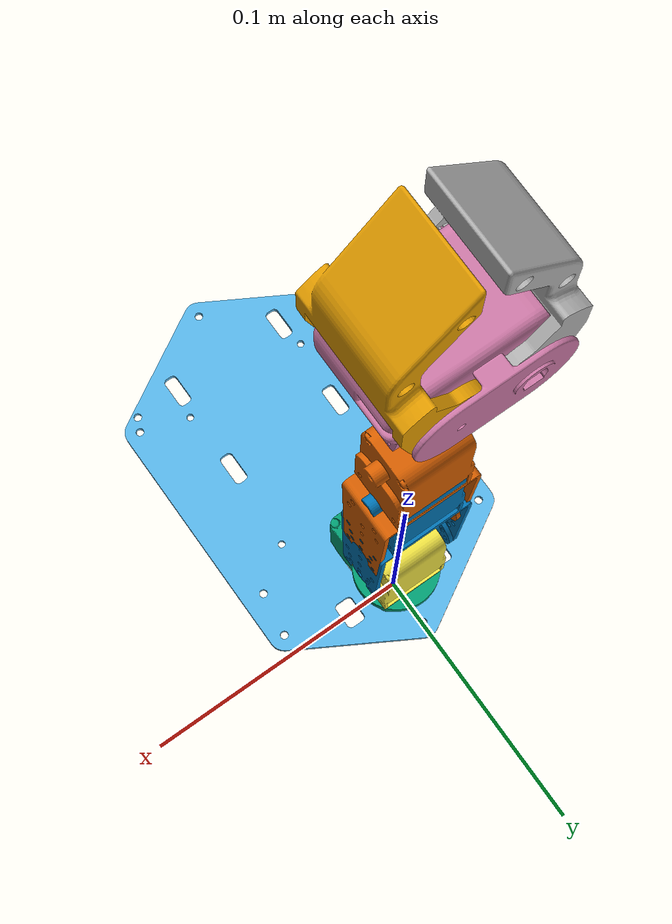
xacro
<?xml version="1.0"?>
<robot name="raspigibbon"
       xmlns:sensor="http://playerstage.sourceforge.net/gazebo/xmlschema/#sensor"
       xmlns:controller="http://playerstage.sourceforge.net/gazebo/xmlschema/#controller"
       xmlns:interface="http://playerstage.sourceforge.net/gazebo/xmlschema/#interface"
       xmlns:xacro="http://ros.org/wiki/xacro">

  <xacro:include filename="$(find raspigibbon_description)/urdf/base.urdf.xacro"/>
  <xacro:include filename="$(find raspigibbon_description)/urdf/link.urdf.xacro"/>

  <!-- ========== Link & Joint ========== -->
  <xacro:base_link/>
  <xacro:servo_link linkid="1" meshid="2" jointname="joint1" parent="link0">
    <origin xyz="0 0 0.029" rpy="0 0 0"/>
    <axis xyz="0 0 -1"/>
    <limit lower="-2.52" upper="2.52" effort="0.5293" velocity="6.159937255"/>
    <origin xyz="0.000157 0 0.019222"/>
    <mass value="0.023032"/>
    <inertia ixx="0.000003514815" ixy="-0.000000000001" iyy="0.000003930066" ixz="-0.000000004487" iyz="0.000000000001" izz="0.000001852796"/>
  </xacro:servo_link>

  <xacro:servo_link linkid="2" meshid="3" jointname="joint2" parent="link1">
    <origin xyz="0 0 0.03055" rpy="0 0 0"/>
    <axis xyz="1 0 0"/>
    <limit lower="-2.52" upper="2.52" effort="0.5293" velocity="6.159937255"/>
    <origin xyz="0.000136 0 0.007403"/>
    <mass value="0.032345"/>
    <inertia ixx="0.000017682369" ixy="-0.000000000049" iyy="0.000019757486" ixz="-0.000000000767" iyz="0.000000000197" izz="0.000004109466"/>
  </xacro:servo_link>

  <xacro:servo_link linkid="3" meshid="4" jointname="joint3" parent="link2">
    <origin xyz="0 0 0.08055" rpy="0 0 0"/>
    <axis xyz="1 0 0"/>
    <limit lower="-2.52" upper="2.52" effort="0.5293" velocity="6.159937255"/>
    <origin xyz="0.000136 0 0.007403"/>
    <mass value="0.032345"/>
    <inertia ixx="0.000017682369" ixy="-0.000000000049" iyy="0.000019757486" ixz="-0.000000000767" iyz="0.000000000197" izz="0.000004109466"/>
  </xacro:servo_link>

  <xacro:servo_link linkid="4" meshid="5" jointname="joint4" parent="link3">
    <origin xyz="0 0 0.08055" rpy="0 0 0"/>
    <axis xyz="1 0 0"/>
    <limit lower="-1.99" upper="1.99" effort="0.5293" velocity="6.159937255"/>
    <origin xyz="0.000253 0.000821 0.013947"/>
    <mass value="0.041117"/>
    <inertia ixx="0.000006913101" ixy="0.000000054083" iyy="0.000009528465" ixz="-0.000000059992" iyz="-0.000000095617" izz="0.000008648857"/>
  </xacro:servo_link>

  <xacro:hand_link linkid="5" meshid="1" jointname="joint5" parent="link4">
    <origin xyz="-0.0091 0 0.0342" rpy="0 -1.5708 -1.5708"/>
    <axis xyz="0 0 1"/>
    <limit lower="-1.92" upper="0.05" effort="0.5293" velocity="6.159937255"/>
    <origin xyz="0.000253 0.000821 0.013947"/>
    <mass value="0.041117"/>
    <inertia ixx="0.000006913101" ixy="0.000000054083" iyy="0.000009528465" ixz="-0.000000059992" iyz="-0.000000095617" izz="0.000008648857"/>
  </xacro:hand_link>

  <xacro:hand_link linkid="6" meshid="2" jointname="joint6" parent="link4">
    <origin xyz="0.0091 0.0 0.0342" rpy="0 -1.5708 -1.5708"/>
    <axis xyz="0 0 1"/>
    <limit lower="-0.05" upper="1.92" effort="0.5293" velocity="6.159937255"/>
    <origin xyz="0.000253 0.000821 0.013947"/>
    <mass value="0.041117"/>
    <inertia ixx="0.000006913101" ixy="0.000000054083" iyy="0.000009528465" ixz="-0.000000059992" iyz="-0.000000095617" izz="0.000008648857"/>
  </xacro:hand_link>

  <!-- ========== Transmission ========== -->
  <xacro:servo_trans joint_name="joint1" interface="PositionJointInterface"/>
  <xacro:servo_trans joint_name="joint2" interface="PositionJointInterface"/>
  <xacro:servo_trans joint_name="joint3" interface="PositionJointInterface"/>
  <xacro:servo_trans joint_name="joint4" interface="PositionJointInterface"/>
  <xacro:servo_trans joint_name="joint5" interface="PositionJointInterface"/>
  <xacro:servo_trans joint_name="joint6" interface="PositionJointInterface"/>

  <!-- ========== Gazebo ========== -->
  <gazebo>
    <plugin name="gazebo_ros_control" filename="libgazebo_ros_control.so">
      <robotNamespace>raspigibbon</robotNamespace>
    </plugin>
  </gazebo>

  <xacro:base_gazebo/>
  <xacro:link_gazebo id="1"/>
  <xacro:link_gazebo id="2"/>
  <xacro:link_gazebo id="3"/>
  <xacro:link_gazebo id="4"/>
  <xacro:link_gazebo id="5"/>

</robot>

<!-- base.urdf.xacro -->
<robot xmlns:xacro="http://ros.org/wiki/xacro">
  <xacro:include filename="$(find raspigibbon_description)/urdf/base.gazebo.xacro"/>
  <xacro:property name="M_PI" value="3.1415926535897931" />
  <xacro:property name="velocity_scale_factor" value="1.0"/>
  <xacro:macro name="base_link">
    <link name="world"/>

    <joint name="world2base" type="fixed">
      <parent link="world"/>
      <child link="base_link"/>
    </joint>

    <link name="base_link">
      <visual>
        <geometry>
          <mesh filename="package://raspigibbon_description/meshes/dae/base_link.dae"/>
        </geometry>
      </visual>
      <collision>
        <geometry>
          <mesh filename="package://raspigibbon_description/meshes/dae/base_link.dae"/>
        </geometry>
      </collision>
      <inertial>
        <origin xyz="0 -0.008722 0.01556 " />
        <mass value="0.060272" />
        <inertia ixx="0.000080586983" ixy="-0.000000000016" iyy="0.000042795591" ixz="0" iyz="0" izz="0.000123342393" />
      </inertial>
    </link>

    <joint name="joint0" type="fixed">
      <origin xyz="0.0 0.0 0.0" />
      <parent link="base_link" />
      <child link="link0" />
    </joint>

    <link name="link0">
      <visual>
        <geometry>
          <mesh filename="package://raspigibbon_description/meshes/dae/servo1_link.dae" />
        </geometry>
      </visual>
      <collision>
        <geometry>
          <mesh filename="package://raspigibbon_description/meshes/dae/servo1_link.dae" />
        </geometry>
      </collision>
      <inertial>
        <origin xyz="0 -0.008722 0.01556 " />
        <mass value="0.022267" />
        <inertia ixx="0.000003621474" ixy="0.000000000001" iyy="0.000001983132" ixz="-0.000000000001" iyz="-0.000000215045" izz="0.000003182899" />
      </inertial>
    </link>
  </xacro:macro>
</robot>

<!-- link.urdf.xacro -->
<robot xmlns:xacro="http://ros.org/wiki/xacro">
  <xacro:include filename="$(find raspigibbon_description)/urdf/link.gazebo.xacro" />
  <xacro:include filename="$(find raspigibbon_description)/urdf/link.transmission.xacro" />
  <xacro:property name="M_PI" value="3.1415926535897931" />
  <xacro:property name="velocity_scale_factor" value="1.0" />
  <xacro:property name="joint_friction" value="1.0" />
  <xacro:property name="joint_damping" value="1.0" />
  <xacro:macro name="servo_link" params="linkid meshid jointname parent *joint_origin *joint_axis *joint_limit *inertial_origin *inertial_mass *inertial_inertia">
    <joint name="${jointname}" type="revolute">
      <insert_block name="joint_origin" />
      <insert_block name="joint_axis" />
      <insert_block name="joint_limit" />
      <friction friction="${joint_friction}" />
      <dynamics damping="${joint_damping}" />
      <parent link="${parent}" />
      <child link="link${linkid}" />
    </joint>
    <link name="link${linkid}">
      <visual>
        <geometry>
          <mesh filename="package://raspigibbon_description/meshes/dae/servo${meshid}_link.dae" />
        </geometry>
      </visual>
      <collision>
        <geometry>
          <mesh filename="package://raspigibbon_description/meshes/dae/servo${meshid}_link.dae" />
        </geometry>
      </collision>
      <inertial>
        <insert_block name="inertial_origin" />
        <insert_block name="inertial_mass" />
        <insert_block name="inertial_inertia" />
      </inertial>
    </link>
  </xacro:macro>

  <xacro:macro name="hand_link" params="linkid meshid jointname parent *joint_origin *joint_axis *joint_limit *inertial_origin *inertial_mass *inertial_inertia">
    <joint name="${jointname}" type="revolute">
      <insert_block name="joint_origin" />
      <insert_block name="joint_axis" />
      <insert_block name="joint_limit" />
      <friction friction="${joint_friction}" />
      <dynamics damping="${joint_damping}" />
      <parent link="${parent}" />
      <child link="link${linkid}" />
    </joint>
    <link name="link${linkid}">
      <visual>
        <geometry>
          <mesh filename="package://raspigibbon_description/meshes/dae/hand_link${meshid}.dae" />
        </geometry>
      </visual>
      <collision>
        <geometry>
          <mesh filename="package://raspigibbon_description/meshes/dae/hand_link${meshid}.dae" />
        </geometry>
      </collision>
      <inertial>
        <insert_block name="inertial_origin" />
        <insert_block name="inertial_mass" />
        <insert_block name="inertial_inertia" />
      </inertial>
    </link>
  </xacro:macro>
</robot>
